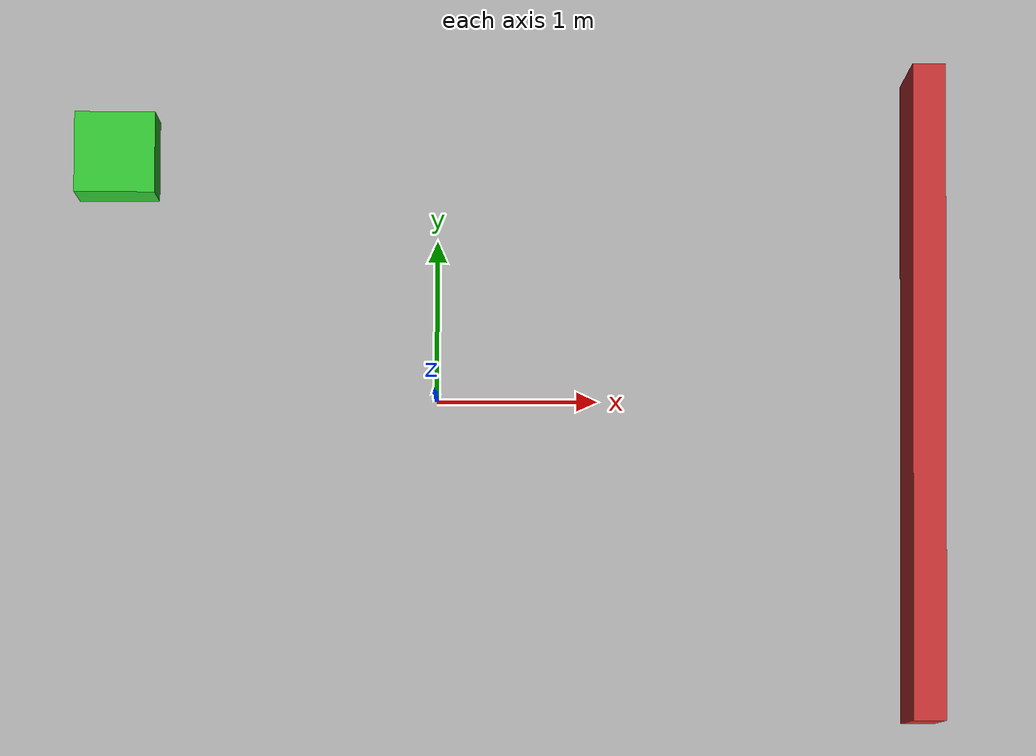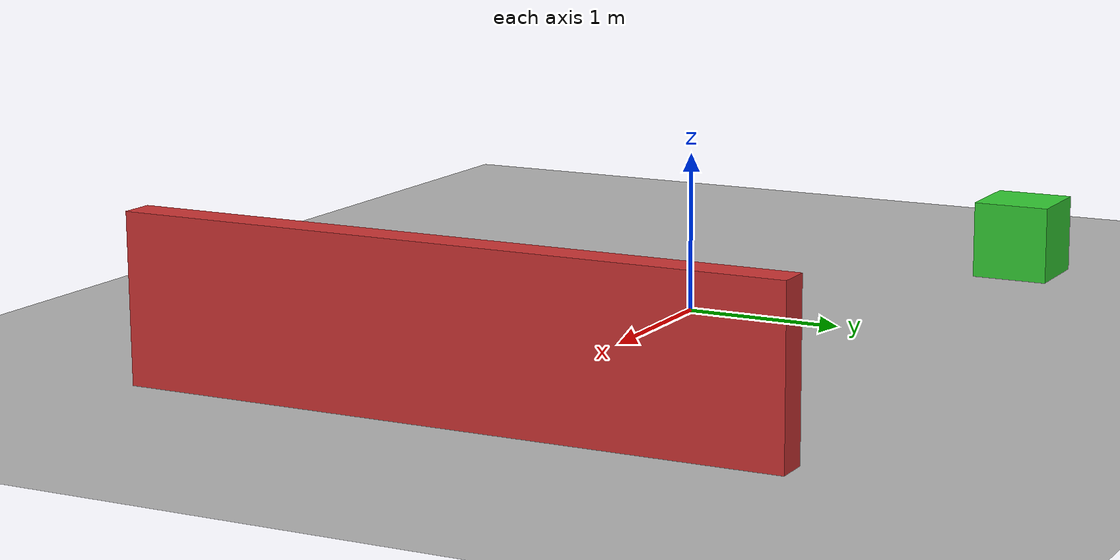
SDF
<?xml version="1.0" ?>
<sdf version="1.9">
  <world name="default">
    <plugin filename="gz-sim-physics-system" name="gz::sim::systems::Physics"/>
    <plugin filename="gz-sim-user-commands-system" name="gz::sim::systems::UserCommands"/>
    <plugin filename="gz-sim-scene-broadcaster-system" name="gz::sim::systems::SceneBroadcaster"/>

    <plugin filename="gz-sim-sensors-system" name="gz::sim::systems::Sensors">
      <render_engine>ogre2</render_engine>
    </plugin>

    <light name="sun" type="directional">
      <cast_shadows>true</cast_shadows>
      <pose>0 0 10 0 0 0</pose>
      <diffuse>0.8 0.8 0.8 1</diffuse>
      <specular>0.2 0.2 0.2 1</specular>
      <direction>-0.5 0.1 -0.9</direction>
    </light>

    <model name="ground_plane">
      <static>true</static>
      <link name="link">
        <collision name="collision">
          <geometry>
            <plane>
              <normal>0 0 1</normal>
              <size>100 100</size>
            </plane>
          </geometry>
        </collision>
        <visual name="visual">
          <geometry>
            <plane>
              <normal>0 0 1</normal>
              <size>100 100</size>
            </plane>
          </geometry>
          <material>
            <ambient>0.7 0.7 0.7 1</ambient>
            <diffuse>0.7 0.7 0.7 1</diffuse>
          </material>
        </visual>
      </link>
    </model>

    <model name="wall1">
      <static>true</static>
      <pose>3 0 0.5 0 0 0</pose>
      <link name="link">
        <collision name="collision">
          <geometry>
            <box><size>0.2 4 1</size></box>
          </geometry>
        </collision>
        <visual name="visual">
          <geometry>
            <box><size>0.2 4 1</size></box>
          </geometry>
          <material>
            <ambient>0.8 0.2 0.2 1</ambient>
            <diffuse>0.8 0.2 0.2 1</diffuse>
          </material>
        </visual>
      </link>
    </model>

    <model name="box1">
      <static>true</static>
      <pose>-2 1.5 0.25 0 0 0</pose>
      <link name="link">
        <collision name="collision">
          <geometry>
            <box><size>0.5 0.5 0.5</size></box>
          </geometry>
        </collision>
        <visual name="visual">
          <geometry>
            <box><size>0.5 0.5 0.5</size></box>
          </geometry>
          <material>
            <ambient>0.2 0.8 0.2 1</ambient>
            <diffuse>0.2 0.8 0.2 1</diffuse>
          </material>
        </visual>
      </link>
    </model>
  </world>
</sdf>
